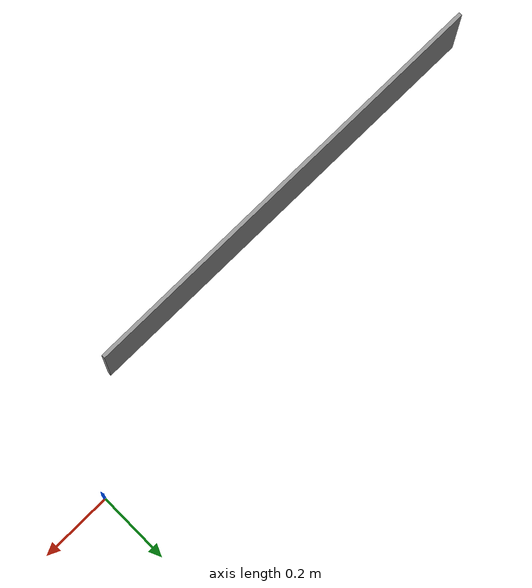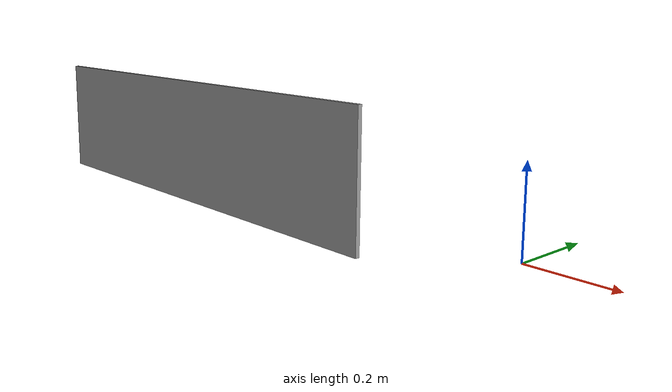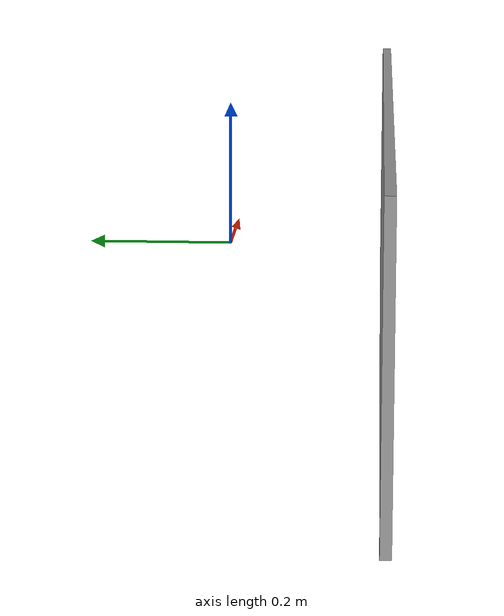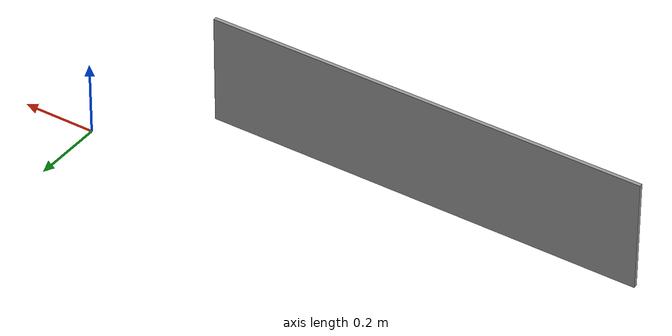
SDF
<?xml version='1.0'?>
<sdf version='1.7'>
  <model name='12'>
    <pose>-0.711 -0.111 0 0 -0 0</pose>
    <link name='Wall_31'>
      <collision name='Wall_31_Collision'>
        <geometry>
          <box>
            <size>1.2 0.01 0.3</size>
          </box>
        </geometry>
        <pose>0 0 0.15 0 -0 0</pose>
      </collision>
      <visual name='Wall_31_Visual'>
        <pose>0 0 0.15 0 -0 0</pose>
        <geometry>
          <box>
            <size>1.2 0.01 0.3</size>
          </box>
        </geometry>
        <material>
          <script>
            <uri>file://media/materials/scripts/gazebo.material</uri>
            <name>Gazebo/Grey</name>
          </script>
          <ambient>1 1 1 1</ambient>
        </material>
        <meta>
          <layer>0</layer>
        </meta>
      </visual>
      <pose>-0.111 -0.106 0 0 -0 0</pose>
    </link>
    <static>1</static>
  </model>
</sdf>
